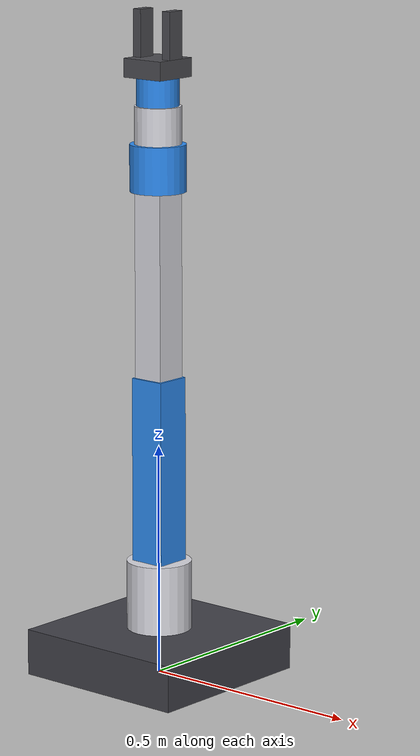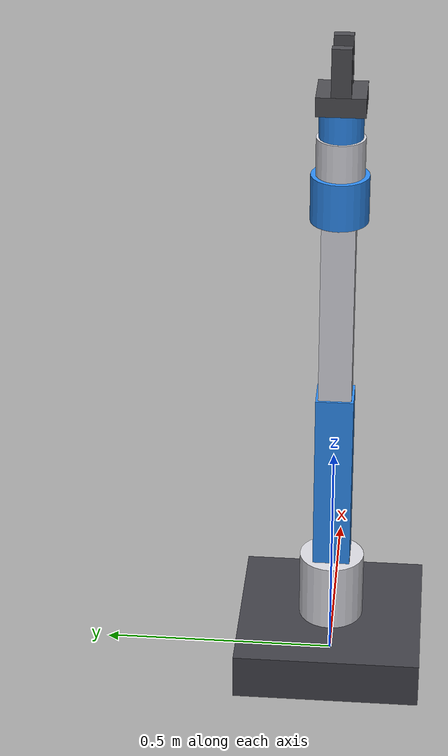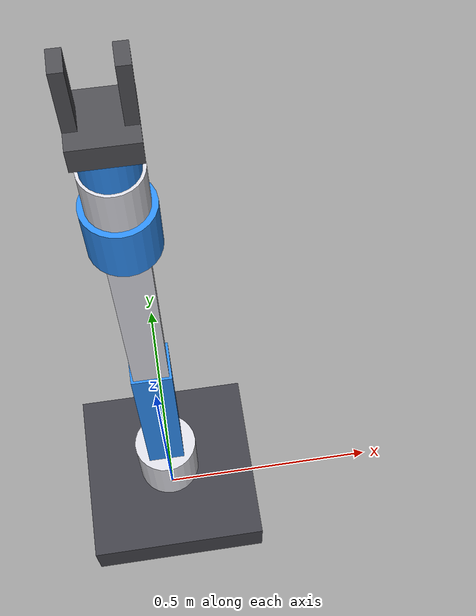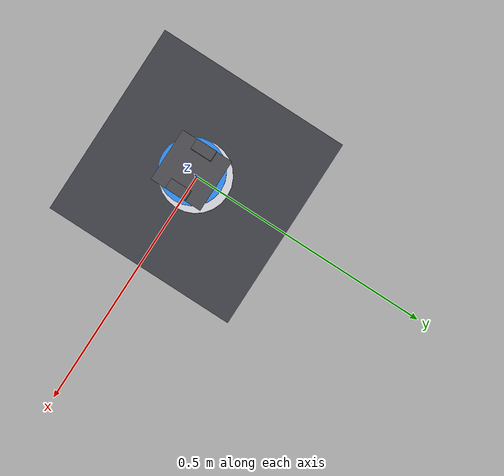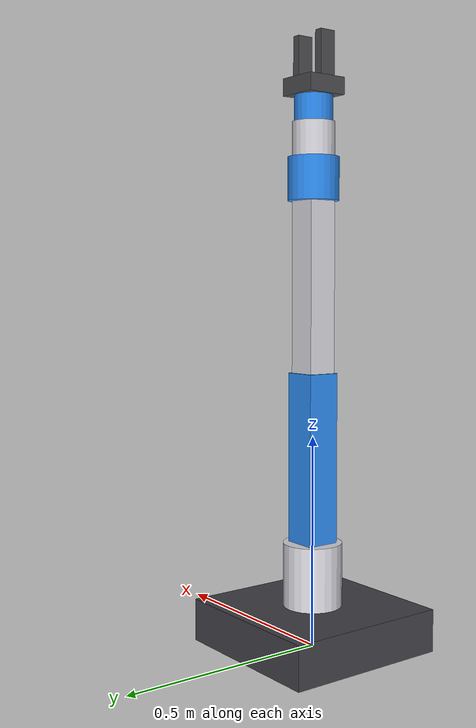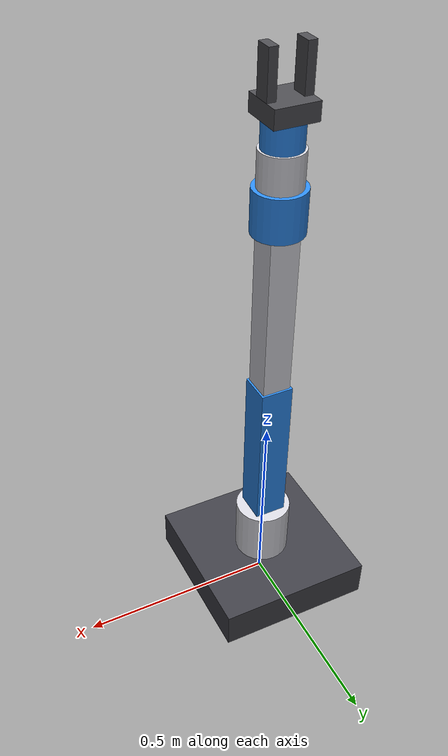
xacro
<?xml version="1.0"?>
<!-- Main robot description: includes the arm and the Gazebo control integration. -->
<robot xmlns:xacro="http://www.ros.org/wiki/xacro" name="nexus_arm">

  <xacro:include filename="$(find nexus_description)/urdf/nexus_arm.xacro"/>
  <xacro:include filename="$(find nexus_description)/urdf/gazebo_control.xacro"/>

  <!-- Gazebo color hints for links -->
  <gazebo reference="base_link">
    <material>Gazebo/DarkGrey</material>
  </gazebo>
  <gazebo reference="link1">
    <material>Gazebo/Grey</material>
  </gazebo>

</robot>

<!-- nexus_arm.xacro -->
<robot xmlns:xacro="http://www.ros.org/wiki/xacro" name="nexus_arm">

  <!-- ===================== Materials ===================== -->
  <material name="base_material">
    <color rgba="0.25 0.25 0.28 1.0"/>
  </material>
  <material name="link_material">
    <color rgba="0.85 0.85 0.88 1.0"/>
  </material>
  <material name="accent_material">
    <color rgba="0.18 0.55 0.95 1.0"/>
  </material>
  <material name="gripper_material">
    <color rgba="0.30 0.30 0.32 1.0"/>
  </material>

  <!-- ===================== Macros ===================== -->
  <xacro:macro name="inertia_box" params="m x y z">
    <inertial>
      <mass value="${m}"/>
      <inertia ixx="${m*(y*y+z*z)/12}" ixy="0.0" ixz="0.0"
               iyy="${m*(x*x+z*z)/12}" iyz="0.0"
               izz="${m*(x*x+y*y)/12}"/>
    </inertial>
  </xacro:macro>

  <xacro:macro name="inertia_cyl" params="m r h">
    <inertial>
      <mass value="${m}"/>
      <inertia ixx="${m*(3*r*r+h*h)/12}" ixy="0.0" ixz="0.0"
               iyy="${m*(3*r*r+h*h)/12}" iyz="0.0"
               izz="${m*r*r/2}"/>
    </inertial>
  </xacro:macro>

  <!-- ===================== Base ===================== -->
  <link name="base_link">
    <visual>
      <origin xyz="0 0 0.05" rpy="0 0 0"/>
      <geometry><box size="0.4 0.4 0.1"/></geometry>
      <material name="base_material"/>
    </visual>
    <collision>
      <origin xyz="0 0 0.05" rpy="0 0 0"/>
      <geometry><box size="0.4 0.4 0.1"/></geometry>
    </collision>
    <xacro:inertia_box m="5.0" x="0.4" y="0.4" z="0.1"/>
  </link>

  <!-- ===================== Link 1 (shoulder) ===================== -->
  <link name="link1">
    <visual>
      <origin xyz="0 0 0.075" rpy="0 0 0"/>
      <geometry><cylinder radius="0.07" length="0.15"/></geometry>
      <material name="link_material"/>
    </visual>
    <collision>
      <origin xyz="0 0 0.075" rpy="0 0 0"/>
      <geometry><cylinder radius="0.07" length="0.15"/></geometry>
    </collision>
    <xacro:inertia_cyl m="1.2" r="0.07" h="0.15"/>
  </link>

  <joint name="joint1" type="revolute">
    <parent link="base_link"/>
    <child link="link1"/>
    <origin xyz="0 0 0.1" rpy="0 0 0"/>
    <axis xyz="0 0 1"/>
    <limit lower="-3.14" upper="3.14" effort="50" velocity="2.0"/>
    <dynamics damping="0.5" friction="0.1"/>
  </joint>

  <!-- ===================== Link 2 (upper arm) ===================== -->
  <link name="link2">
    <visual>
      <origin xyz="0 0 0.2" rpy="0 0 0"/>
      <geometry><box size="0.08 0.08 0.4"/></geometry>
      <material name="accent_material"/>
    </visual>
    <collision>
      <origin xyz="0 0 0.2" rpy="0 0 0"/>
      <geometry><box size="0.08 0.08 0.4"/></geometry>
    </collision>
    <xacro:inertia_box m="0.9" x="0.08" y="0.08" z="0.4"/>
  </link>

  <joint name="joint2" type="revolute">
    <parent link="link1"/>
    <child link="link2"/>
    <origin xyz="0 0 0.15" rpy="0 0 0"/>
    <axis xyz="0 1 0"/>
    <limit lower="-1.57" upper="1.57" effort="50" velocity="2.0"/>
    <dynamics damping="0.5" friction="0.1"/>
  </joint>

  <!-- ===================== Link 3 (forearm) ===================== -->
  <link name="link3">
    <visual>
      <origin xyz="0 0 0.2" rpy="0 0 0"/>
      <geometry><box size="0.07 0.07 0.4"/></geometry>
      <material name="link_material"/>
    </visual>
    <collision>
      <origin xyz="0 0 0.2" rpy="0 0 0"/>
      <geometry><box size="0.07 0.07 0.4"/></geometry>
    </collision>
    <xacro:inertia_box m="0.7" x="0.07" y="0.07" z="0.4"/>
  </link>

  <joint name="joint3" type="revolute">
    <parent link="link2"/>
    <child link="link3"/>
    <origin xyz="0 0 0.4" rpy="0 0 0"/>
    <axis xyz="0 1 0"/>
    <limit lower="-2.0" upper="2.0" effort="40" velocity="2.0"/>
    <dynamics damping="0.5" friction="0.1"/>
  </joint>

  <!-- ===================== Link 4 (wrist pitch) ===================== -->
  <link name="link4">
    <visual>
      <origin xyz="0 0 0.05" rpy="0 0 0"/>
      <geometry><cylinder radius="0.06" length="0.1"/></geometry>
      <material name="accent_material"/>
    </visual>
    <collision>
      <origin xyz="0 0 0.05" rpy="0 0 0"/>
      <geometry><cylinder radius="0.06" length="0.1"/></geometry>
    </collision>
    <xacro:inertia_cyl m="0.4" r="0.06" h="0.1"/>
  </link>

  <joint name="joint4" type="revolute">
    <parent link="link3"/>
    <child link="link4"/>
    <origin xyz="0 0 0.4" rpy="0 0 0"/>
    <axis xyz="0 1 0"/>
    <limit lower="-2.0" upper="2.0" effort="20" velocity="2.5"/>
    <dynamics damping="0.3" friction="0.1"/>
  </joint>

  <!-- ===================== Link 5 (wrist roll) ===================== -->
  <link name="link5">
    <visual>
      <origin xyz="0 0 0.04" rpy="0 0 0"/>
      <geometry><cylinder radius="0.05" length="0.08"/></geometry>
      <material name="link_material"/>
    </visual>
    <collision>
      <origin xyz="0 0 0.04" rpy="0 0 0"/>
      <geometry><cylinder radius="0.05" length="0.08"/></geometry>
    </collision>
    <xacro:inertia_cyl m="0.3" r="0.05" h="0.08"/>
  </link>

  <joint name="joint5" type="revolute">
    <parent link="link4"/>
    <child link="link5"/>
    <origin xyz="0 0 0.1" rpy="0 0 0"/>
    <axis xyz="1 0 0"/>
    <limit lower="-3.14" upper="3.14" effort="15" velocity="3.0"/>
    <dynamics damping="0.2" friction="0.1"/>
  </joint>

  <!-- ===================== Link 6 (tool flange) ===================== -->
  <link name="link6">
    <visual>
      <origin xyz="0 0 0.03" rpy="0 0 0"/>
      <geometry><cylinder radius="0.045" length="0.06"/></geometry>
      <material name="accent_material"/>
    </visual>
    <collision>
      <origin xyz="0 0 0.03" rpy="0 0 0"/>
      <geometry><cylinder radius="0.045" length="0.06"/></geometry>
    </collision>
    <xacro:inertia_cyl m="0.2" r="0.045" h="0.06"/>
  </link>

  <joint name="joint6" type="revolute">
    <parent link="link5"/>
    <child link="link6"/>
    <origin xyz="0 0 0.08" rpy="0 0 0"/>
    <axis xyz="0 0 1"/>
    <limit lower="-3.14" upper="3.14" effort="15" velocity="3.0"/>
    <dynamics damping="0.2" friction="0.1"/>
  </joint>

  <!-- ===================== Gripper ===================== -->
  <link name="gripper_base">
    <visual>
      <origin xyz="0 0 0.02" rpy="0 0 0"/>
      <geometry><box size="0.1 0.1 0.04"/></geometry>
      <material name="gripper_material"/>
    </visual>
    <collision>
      <origin xyz="0 0 0.02" rpy="0 0 0"/>
      <geometry><box size="0.1 0.1 0.04"/></geometry>
    </collision>
    <xacro:inertia_box m="0.15" x="0.1" y="0.1" z="0.04"/>
  </link>

  <joint name="gripper_joint" type="fixed">
    <parent link="link6"/>
    <child link="gripper_base"/>
    <origin xyz="0 0 0.06" rpy="0 0 0"/>
  </joint>

  <link name="left_finger">
    <visual>
      <origin xyz="0 0 0.05" rpy="0 0 0"/>
      <geometry><box size="0.02 0.04 0.1"/></geometry>
      <material name="gripper_material"/>
    </visual>
    <collision>
      <origin xyz="0 0 0.05" rpy="0 0 0"/>
      <geometry><box size="0.02 0.04 0.1"/></geometry>
    </collision>
    <xacro:inertia_box m="0.05" x="0.02" y="0.04" z="0.1"/>
  </link>

  <joint name="left_finger_joint" type="prismatic">
    <parent link="gripper_base"/>
    <child link="left_finger"/>
    <origin xyz="0.04 0 0.04" rpy="0 0 0"/>
    <axis xyz="0 1 0"/>
    <limit lower="-0.04" upper="0.04" effort="10" velocity="0.2"/>
    <dynamics damping="0.1" friction="0.2"/>
  </joint>

  <link name="right_finger">
    <visual>
      <origin xyz="0 0 0.05" rpy="0 0 0"/>
      <geometry><box size="0.02 0.04 0.1"/></geometry>
      <material name="gripper_material"/>
    </visual>
    <collision>
      <origin xyz="0 0 0.05" rpy="0 0 0"/>
      <geometry><box size="0.02 0.04 0.1"/></geometry>
    </collision>
    <xacro:inertia_box m="0.05" x="0.02" y="0.04" z="0.1"/>
  </link>

  <joint name="right_finger_joint" type="prismatic">
    <parent link="gripper_base"/>
    <child link="right_finger"/>
    <origin xyz="-0.04 0 0.04" rpy="0 0 0"/>
    <axis xyz="0 1 0"/>
    <limit lower="-0.04" upper="0.04" effort="10" velocity="0.2"/>
    <mimic joint="left_finger_joint" multiplier="-1" offset="0"/>
    <dynamics damping="0.1" friction="0.2"/>
  </joint>

  <!-- ===================== Tool frame ===================== -->
  <link name="tool0"/>
  <joint name="tool0_joint" type="fixed">
    <parent link="gripper_base"/>
    <child link="tool0"/>
    <origin xyz="0 0 0.14" rpy="0 0 0"/>
  </joint>

</robot>

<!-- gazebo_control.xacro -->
<robot xmlns:xacro="http://www.ros.org/wiki/xacro" name="nexus_arm">

  <!-- ===================== ros2_control ===================== -->
  <ros2_control name="nexus_arm_controller" type="system">
    <hardware>
      <plugin>gazebo_ros2_control/GazeboSystem</plugin>
    </hardware>

    <joint name="joint1">
      <command_interface name="position"/>
      <command_interface name="velocity"/>
      <command_interface name="effort"/>
      <state_interface name="position"/>
      <state_interface name="velocity"/>
      <state_interface name="effort"/>
    </joint>
    <joint name="joint2">
      <command_interface name="position"/>
      <command_interface name="velocity"/>
      <command_interface name="effort"/>
      <state_interface name="position"/>
      <state_interface name="velocity"/>
      <state_interface name="effort"/>
    </joint>
    <joint name="joint3">
      <command_interface name="position"/>
      <command_interface name="velocity"/>
      <command_interface name="effort"/>
      <state_interface name="position"/>
      <state_interface name="velocity"/>
      <state_interface name="effort"/>
    </joint>
    <joint name="joint4">
      <command_interface name="position"/>
      <command_interface name="velocity"/>
      <command_interface name="effort"/>
      <state_interface name="position"/>
      <state_interface name="velocity"/>
      <state_interface name="effort"/>
    </joint>
    <joint name="joint5">
      <command_interface name="position"/>
      <command_interface name="velocity"/>
      <command_interface name="effort"/>
      <state_interface name="position"/>
      <state_interface name="velocity"/>
      <state_interface name="effort"/>
    </joint>
    <joint name="joint6">
      <command_interface name="position"/>
      <command_interface name="velocity"/>
      <command_interface name="effort"/>
      <state_interface name="position"/>
      <state_interface name="velocity"/>
      <state_interface name="effort"/>
    </joint>
    <joint name="left_finger_joint">
      <command_interface name="position"/>
      <state_interface name="position"/>
      <state_interface name="velocity"/>
    </joint>
    <joint name="right_finger_joint">
      <command_interface name="position"/>
      <state_interface name="position"/>
      <state_interface name="velocity"/>
    </joint>
  </ros2_control>

  <!-- ===================== Gazebo plugins ===================== -->
  <gazebo>
    <plugin filename="libgazebo_ros2_control.so" name="ros2_control">
      <robot_param>robot_description</robot_param>
      <robot_namespace>/nexus</robot_namespace>
      <parameters>$(find nexus_description)/config/nexus_controllers.yaml</parameters>
    </plugin>
  </gazebo>

  <!-- ===================== Gripper-mounted camera ===================== -->
  <gazebo reference="gripper_base">
    <sensor name="nexus_camera" type="camera">
      <pose>0 0 0.06 0 0 0</pose>
      <camera>
        <horizontal_fov>1.047</horizontal_fov>
        <image>
          <width>640</width>
          <height>480</height>
          <format>R8G8B8</format>
        </image>
        <clip>
          <near>0.05</near>
          <far>10.0</far>
        </clip>
      </camera>
      <always_on>1</always_on>
      <update_rate>15</update_rate>
      <visualize>true</visualize>
      <plugin filename="libgazebo_ros_camera.so" name="camera_controller">
        <ros>
          <namespace>/nexus/camera</namespace>
          <argument>image_raw:=rgb/image_raw</argument>
          <argument>camera_info:=rgb/camera_info</argument>
        </ros>
        <camera_name>nexus_camera</camera_name>
        <frame_name>camera_link</frame_name>
        <hack_baseline>0.07</hack_baseline>
      </plugin>
    </sensor>
  </gazebo>

  <!-- optical frame convention: z forward, x right, y down -->
  <link name="camera_link"/>
  <joint name="camera_link_joint" type="fixed">
    <parent link="gripper_base"/>
    <child link="camera_link"/>
    <origin xyz="0 0 0.06" rpy="-1.5708 0 -1.5708"/>
  </joint>

</robot>
